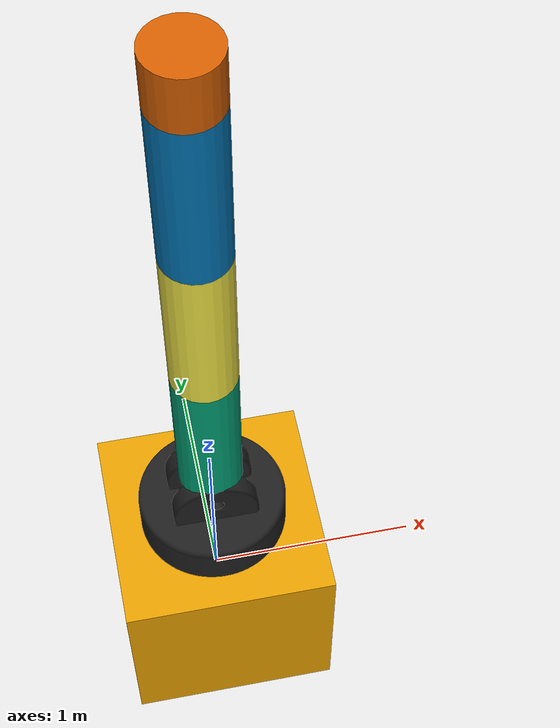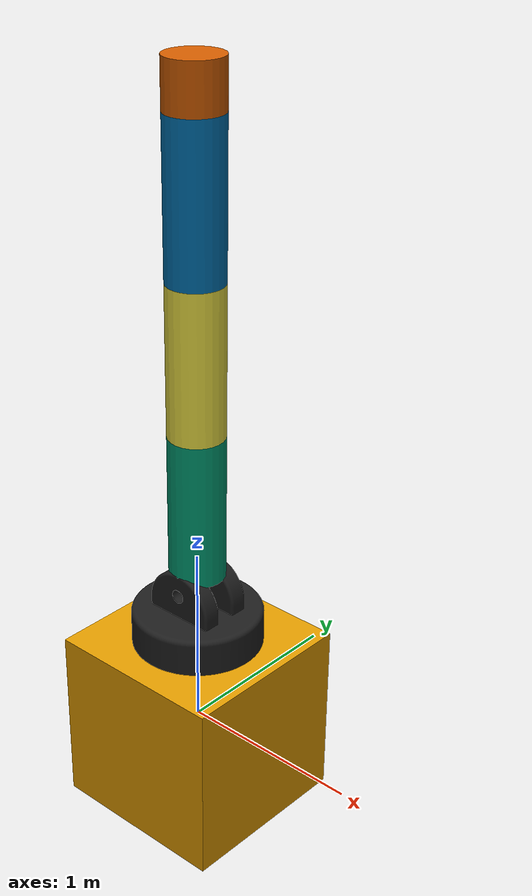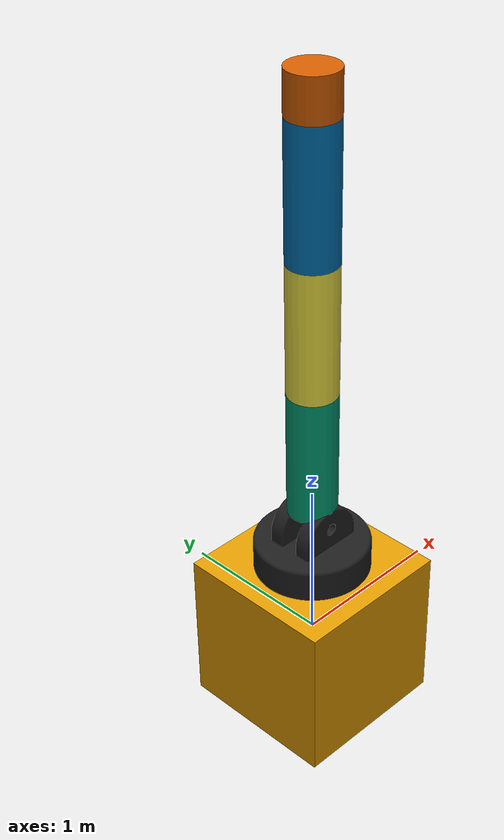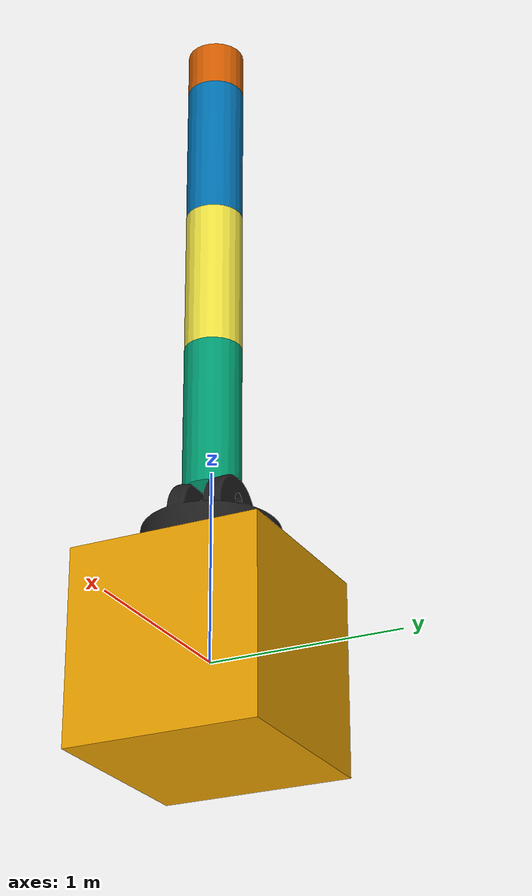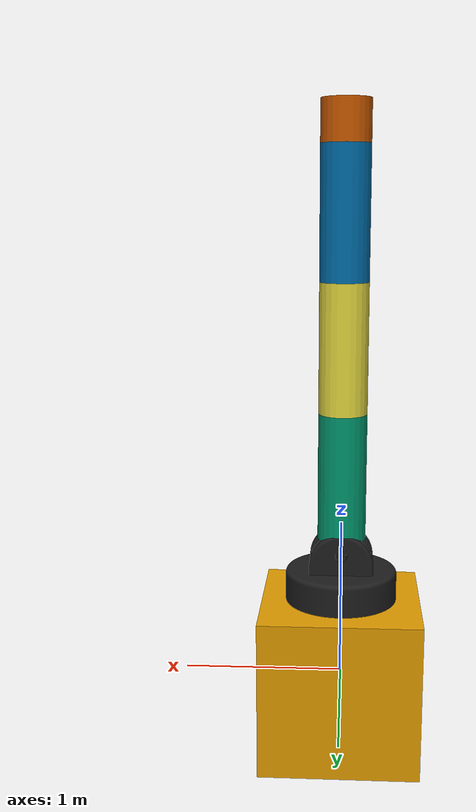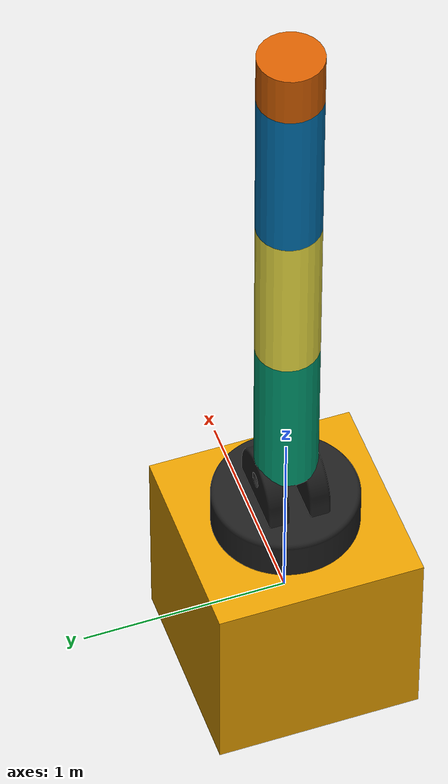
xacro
<?xml version="1.0" ?>

<robot name="mrm" xmlns:xacro="http://www.ros.org/wiki/xacro">

  <!-- BGN - Include -->
  <xacro:include filename="$(find mrm_description)/urdf/robot_parameters.xacro" />
  <xacro:include filename="$(find mrm_description)/urdf/links_joints.xacro" />
  <!-- END - Include -->

  <!-- BGN - Robot description -->
  <m_link_box name="${link_00_name}"
              origin_rpy="0 0 0" origin_xyz="0 0 0"
              mass="1024"
              ixx="170.667" ixy="0" ixz="0"
              iyy="170.667" iyz="0"
              izz="170.667"
              size="1 1 1" />

  <m_joint name="${link_00_name}__${link_01_name}" type="revolute"
           axis_xyz="0 0 1"
           origin_rpy="0 0 0" origin_xyz="0 0 0.5"
           parent="base_link" child="link_01"
           limit_e="1000" limit_l="-3.14" limit_u="3.14" limit_v="0.5" />

  <m_link_mesh name="${link_01_name}"
              origin_rpy="0 0 0" origin_xyz="0 0 -0.1"
              mass="157.633"
              ixx="13.235" ixy="0" ixz="0"
              iyy="13.235" iyz="0"
              izz="9.655"
              meshfile="package://mrm_description/meshes/Link1-v2.stl"
              meshscale="0.001 0.001 0.001" />

  <!-- Robot description with origin initial condition -->
  <m_joint name="${link_01_name}__${link_02_name}" type="revolute"
           axis_xyz="0 1 0"
           origin_rpy="0 0 0" origin_xyz="0 0 0.4"
           parent="link_01" child="link_02"
           limit_e="5000" limit_l="0" limit_u="1" limit_v="2" />

  <m_link_cylinder name="${link_02_name}"
              origin_rpy="0 0 0" origin_xyz="0 0 0.4"
              mass="57.906"
              ixx="12.679" ixy="0" ixz="0"
              iyy="12.679" iyz="0"
              izz="0.651"
              radius="0.15" length="0.8" />

  <m_joint name="${link_02_name}__${link_03_name}" type="revolute"
           axis_xyz="0 1 0"
           origin_rpy="0 0 0" origin_xyz="0 0 0.8"
           parent="link_02" child="link_03"
           limit_e="5000" limit_l="0" limit_u="1" limit_v="2" />

  <m_link_cylinder name="${link_03_name}"
              origin_rpy="0 0 0" origin_xyz="0 0 0.4"
              mass="57.906"
              ixx="12.679" ixy="0" ixz="0"
              iyy="12.679" iyz="0"
              izz="0.651"
              radius="0.15" length="0.8" />

  <m_joint name="${link_03_name}__${link_04_name}" type="revolute"
           axis_xyz="0 1 0"
           origin_rpy="0 0 0" origin_xyz="0 0 0.8"
           parent="link_03" child="link_04"
           limit_e="5000" limit_l="0" limit_u="1" limit_v="2" />

  <m_link_cylinder name="${link_04_name}"
              origin_rpy="0 0 0" origin_xyz="0 0 0.4"
              mass="57.906"
              ixx="12.679" ixy="0" ixz="0"
              iyy="12.679" iyz="0"
              izz="0.651"
              radius="0.15" length="0.8" />

  <!-- Robot description with origin initial condition -->

  <m_joint name="${link_04_name}__${link_05_name}" type="revolute"
           axis_xyz="0 0 1"
           origin_rpy="0 0 0" origin_xyz="0 0 0.8"
           parent="link_04" child="link_05"
           limit_e="1000" limit_l="-3.14" limit_u="3.14" limit_v="0.5" />

  <m_link_cylinder name="${link_05_name}"
              origin_rpy="0 0 0" origin_xyz="0 0 0.125"
              mass="18.056"
              ixx="0.479" ixy="0" ixz="0"
              iyy="0.479" iyz="0"
              izz="0.204"
              radius="0.15" length="0.25" />

  <!-- END - Robot description -->

  <gazebo>
    <plugin name="gazebo_ros_control" filename="libgazebo_ros_control.so">
    </plugin>
  </gazebo>

</robot>

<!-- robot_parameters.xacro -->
<robot xmlns:xacro="http://www.ros.org/wiki/xacro">
  <!-- Arm links -->
  <xacro:property name="link_00_name" value="base_link" />
  <xacro:property name="link_01_name" value="link_01" />
  <xacro:property name="link_02_name" value="link_02" />
  <xacro:property name="link_03_name" value="link_03" />
  <xacro:property name="link_04_name" value="link_04" />
  <xacro:property name="link_05_name" value="link_05" />
  <xacro:property name="link_06_name" value="link_06" />
  <xacro:property name="link_07_name" value="link_07" />
  <xacro:property name="link_08_name" value="link_08" />
  <xacro:property name="link_09_name" value="link_09" />
  <xacro:property name="link_10_name" value="link_10" />
  <xacro:property name="link_11_name" value="link_11" />
</robot>

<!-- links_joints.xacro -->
<robot xmlns:xacro="http://www.ros.org/wiki/xacro">

  <xacro:macro name="m_joint" params="name type axis_xyz origin_rpy origin_xyz parent child limit_e limit_l limit_u limit_v">
    <joint name="${name}" type="${type}">
      <axis xyz="${axis_xyz}" />
      <limit effort="${limit_e}" lower="${limit_l}" upper="${limit_u}" velocity="${limit_v}" />
      <origin rpy="${origin_rpy}" xyz="${origin_xyz}" />
      <parent link="${parent}" />
      <child link="${child}" />
    </joint>
    <transmission name="trans_${name}">
      <type>transmission_interface/SimpleTransmission</type>
      <joint name="${name}">
        <hardwareInterface>hardware_interface/EffortJointInterface</hardwareInterface>
      </joint>
      <actuator name="motor_${name}">
        <hardwareInterface>hardware_interface/EffortJointInterface</hardwareInterface>
        <mechanicalReduction>1</mechanicalReduction>
      </actuator>
    </transmission>
  </xacro:macro>

  <xacro:macro name="m_link_cylinder" params="name origin_xyz origin_rpy radius length mass ixx ixy ixz iyy iyz izz">
    <link name="${name}">
      <inertial>
        <mass value="${mass}" />
        <origin rpy="${origin_rpy}" xyz="${origin_xyz}" />
        <inertia ixx="${ixx}" ixy="${ixy}" ixz="${ixz}" iyy="${iyy}" iyz="${iyz}" izz="${izz}" />
      </inertial>
      <collision>
        <origin rpy="${origin_rpy}" xyz="${origin_xyz}" />
        <geometry>
          <cylinder radius="${radius}" length="${length}" />
        </geometry>
      </collision>
      <visual>
        <origin rpy="${origin_rpy}" xyz="${origin_xyz}" />
        <geometry>
          <cylinder radius="${radius}" length="${length}" />
        </geometry>
      </visual>
    </link>
  </xacro:macro>

  <xacro:macro name="m_link_box" params="name origin_xyz origin_rpy size mass ixx ixy ixz iyy iyz izz">
    <link name="${name}">
      <inertial>
        <mass value="${mass}" />
        <origin rpy="${origin_rpy}" xyz="${origin_xyz}" />
        <inertia ixx="${ixx}" ixy="${ixy}" ixz="${ixz}" iyy="${iyy}" iyz="${iyz}" izz="${izz}" />
      </inertial>
      <collision>
        <origin rpy="${origin_rpy}" xyz="${origin_xyz}" />
        <geometry>
          <box size="${size}" />
        </geometry>
      </collision>
      <visual>
        <origin rpy="${origin_rpy}" xyz="${origin_xyz}" />
        <geometry>
          <box size="${size}" />
        </geometry>
      </visual>
    </link>
  </xacro:macro>

  <xacro:macro name="m_link_mesh" params="name origin_xyz origin_rpy meshfile meshscale mass ixx ixy ixz iyy iyz izz">
    <link name="${name}">
      <inertial>
        <mass value="${mass}" />
        <origin rpy="${origin_rpy}" xyz="${origin_xyz}" />
        <inertia ixx="${ixx}" ixy="${ixy}" ixz="${ixz}" iyy="${iyy}" iyz="${iyz}" izz="${izz}" />
      </inertial>
      <collision>
        <origin rpy="${origin_rpy}" xyz="${origin_xyz}" />
        <geometry>
          <mesh filename="${meshfile}" scale="${meshscale}"/>
        </geometry>
      </collision>
      <visual>
        <origin rpy="${origin_rpy}" xyz="${origin_xyz}" />
        <geometry>
          <mesh filename="${meshfile}" scale="${meshscale}"/>
        </geometry>
        <material name="light_black"/>
      </visual>
    </link>
  </xacro:macro>

</robot>
